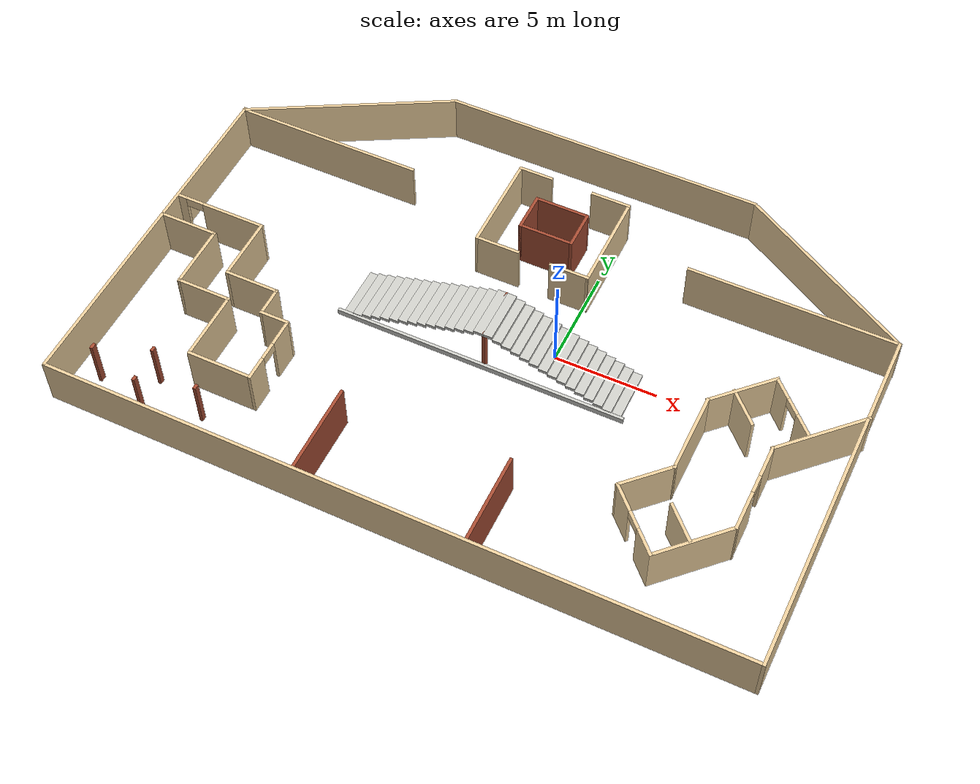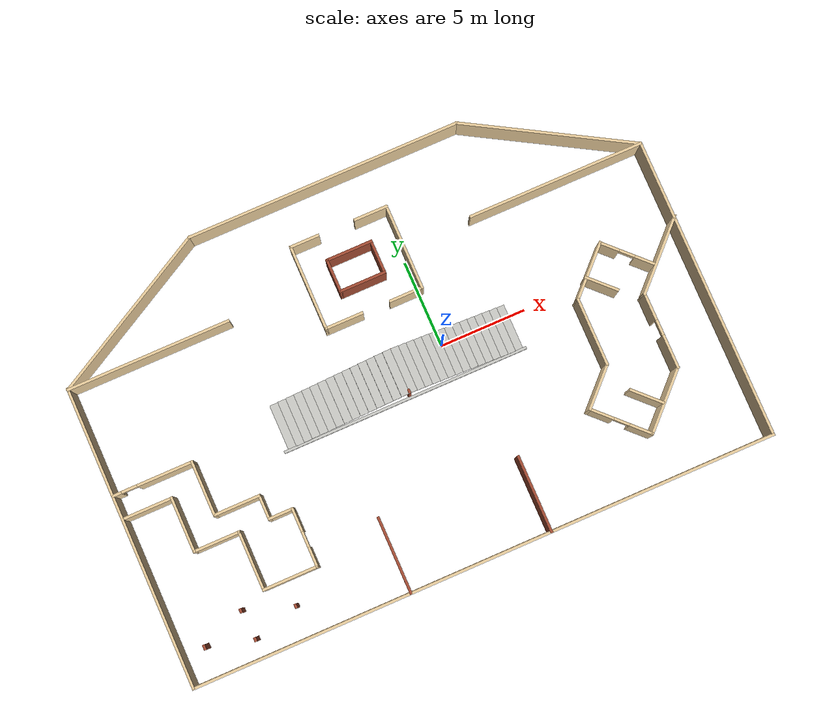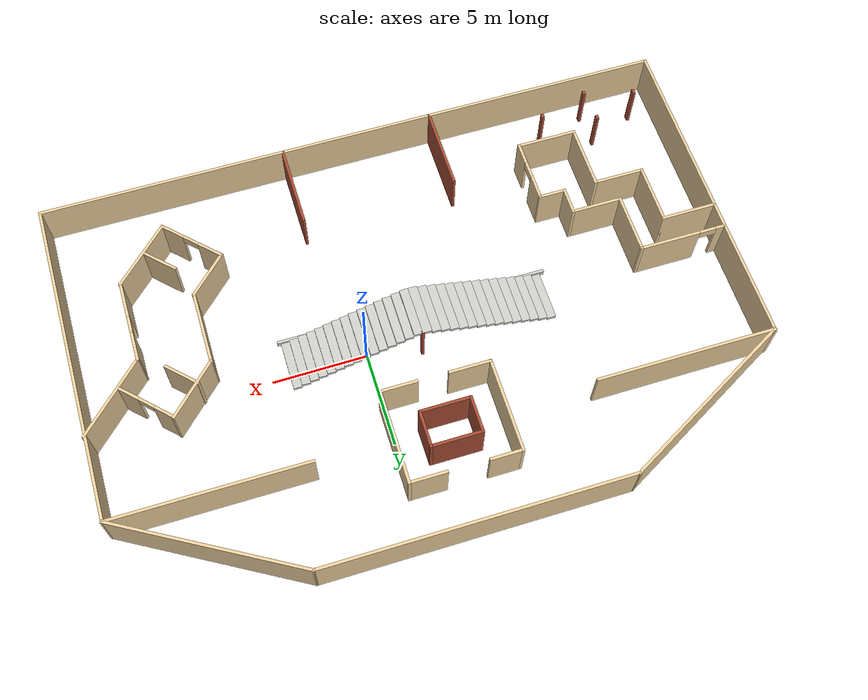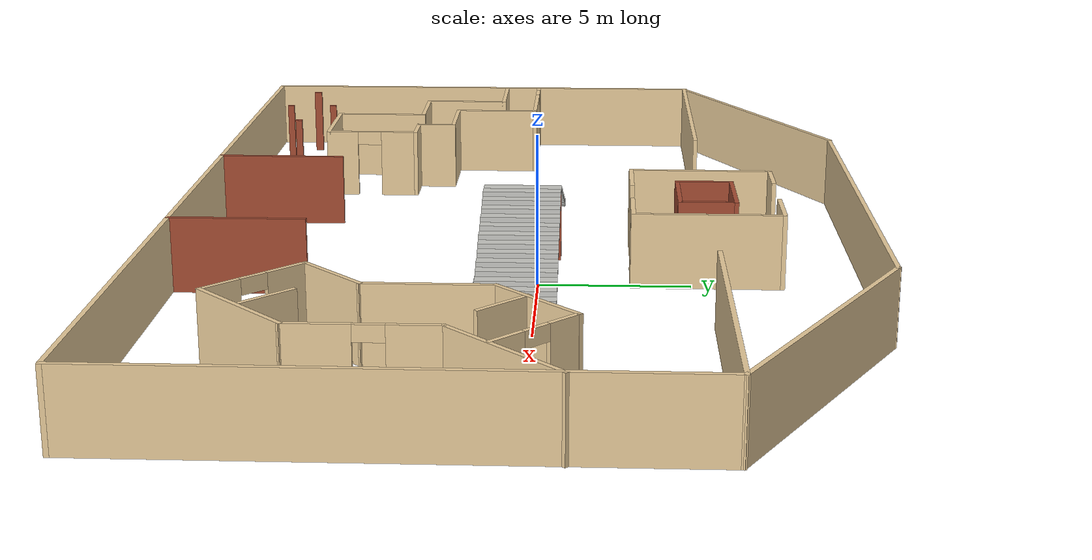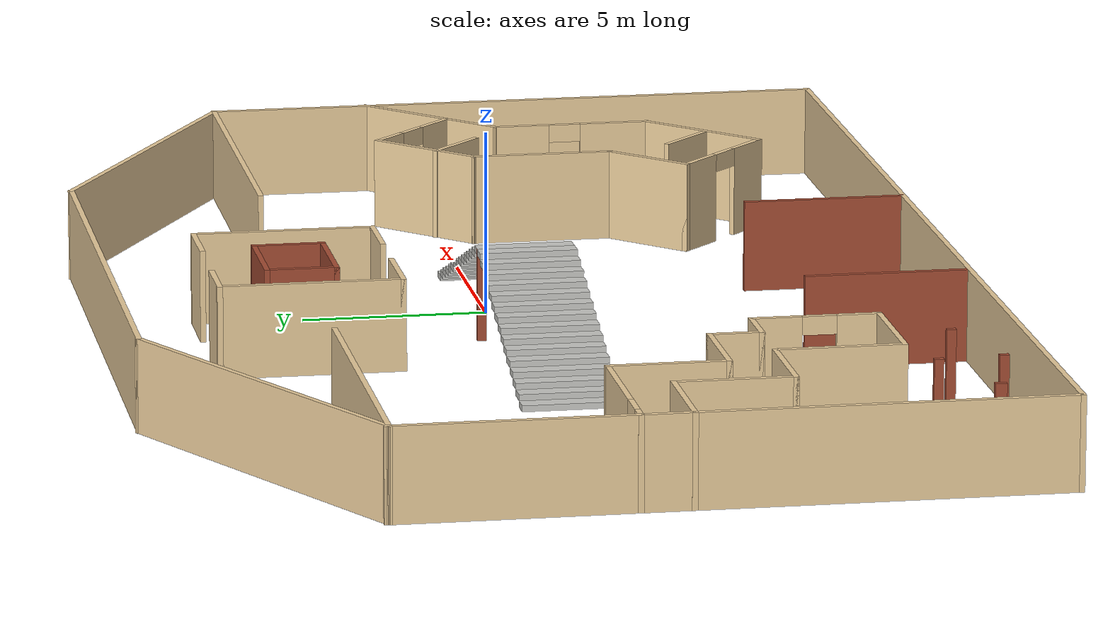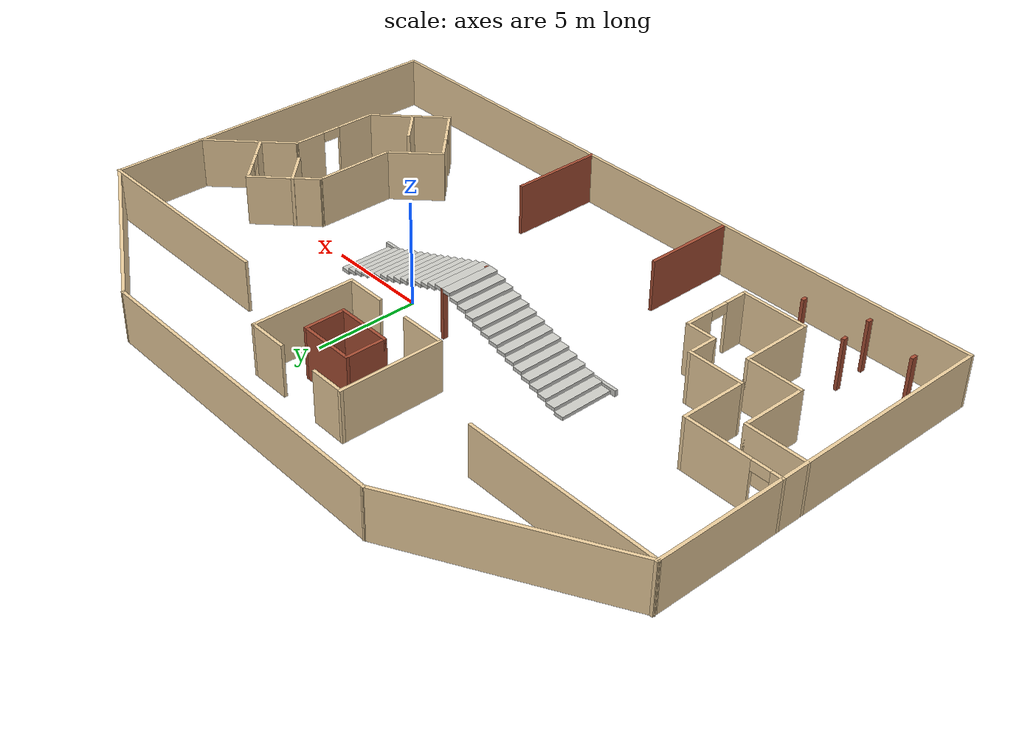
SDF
<sdf version="1.6">
 <model name="Building">
  <pose>-2.6144 -0.55091 0 0 -0 0</pose>
  <link name="Stairs_0">
   <visual name="Stairs_0_Visual_0">
    <pose>6.4462 -0.067038 0.083333 0 -0 -1.5708</pose>
    <geometry><box><size>2.62608 0.454874 0.166667</size></box></geometry>
    <material>
     <script><uri>file://media/materials/scripts/gazebo.material</uri><name>Gazebo/CeilingTiled</name></script>
     <ambient>0.666667 0.67451 1 1</ambient>
    </material>
    <meta><layer>0</layer></meta>
   </visual>
   <collision name="Stairs_0_Collision_0">
    <geometry><box><size>2.62608 0.454874 0.166667</size></box></geometry>
    <pose>6.4462 -0.067038 0.083333 0 -0 -1.5708</pose>
   </collision>
   <visual name="Stairs_0_Visual_1">
    <pose>5.99132 -0.067038 0.25 0 -0 -1.5708</pose>
    <geometry><box><size>2.62608 0.454874 0.166667</size></box></geometry>
    <material>
     <script><uri>file://media/materials/scripts/gazebo.material</uri><name>Gazebo/CeilingTiled</name></script>
     <ambient>0.666667 0.67451 1 1</ambient>
    </material>
    <meta><layer>0</layer></meta>
   </visual>
   <collision name="Stairs_0_Collision_1">
    <geometry><box><size>2.62608 0.454874 0.166667</size></box></geometry>
    <pose>5.99132 -0.067038 0.25 0 -0 -1.5708</pose>
   </collision>
   <visual name="Stairs_0_Visual_2">
    <pose>5.53645 -0.067038 0.416667 0 -0 -1.5708</pose>
    <geometry><box><size>2.62608 0.454874 0.166667</size></box></geometry>
    <material>
     <script><uri>file://media/materials/scripts/gazebo.material</uri><name>Gazebo/CeilingTiled</name></script>
     <ambient>0.666667 0.67451 1 1</ambient>
    </material>
    <meta><layer>0</layer></meta>
   </visual>
   <collision name="Stairs_0_Collision_2">
    <geometry><box><size>2.62608 0.454874 0.166667</size></box></geometry>
    <pose>5.53645 -0.067038 0.416667 0 -0 -1.5708</pose>
   </collision>
   <visual name="Stairs_0_Visual_3">
    <pose>5.08157 -0.067038 0.583333 0 -0 -1.5708</pose>
    <geometry><box><size>2.62608 0.454874 0.166667</size></box></geometry>
    <material>
     <script><uri>file://media/materials/scripts/gazebo.material</uri><name>Gazebo/CeilingTiled</name></script>
     <ambient>0.666667 0.67451 1 1</ambient>
    </material>
    <meta><layer>0</layer></meta>
   </visual>
   <collision name="Stairs_0_Collision_3">
    <geometry><box><size>2.62608 0.454874 0.166667</size></box></geometry>
    <pose>5.08157 -0.067038 0.583333 0 -0 -1.5708</pose>
   </collision>
   <visual name="Stairs_0_Visual_4">
    <pose>4.6267 -0.067038 0.75 0 -0 -1.5708</pose>
    <geometry><box><size>2.62608 0.454874 0.166667</size></box></geometry>
    <material>
     <script><uri>file://media/materials/scripts/gazebo.material</uri><name>Gazebo/CeilingTiled</name></script>
     <ambient>0.666667 0.67451 1 1</ambient>
    </material>
    <meta><layer>0</layer></meta>
   </visual>
   <collision name="Stairs_0_Collision_4">
    <geometry><box><size>2.62608 0.454874 0.166667</size></box></geometry>
    <pose>4.6267 -0.067038 0.75 0 -0 -1.5708</pose>
   </collision>
   <visual name="Stairs_0_Visual_5">
    <pose>4.17183 -0.067038 0.916667 0 -0 -1.5708</pose>
    <geometry><box><size>2.62608 0.454874 0.166667</size></box></geometry>
    <material>
     <script><uri>file://media/materials/scripts/gazebo.material</uri><name>Gazebo/CeilingTiled</name></script>
     <ambient>0.666667 0.67451 1 1</ambient>
    </material>
    <meta><layer>0</layer></meta>
   </visual>
   <collision name="Stairs_0_Collision_5">
    <geometry><box><size>2.62608 0.454874 0.166667</size></box></geometry>
    <pose>4.17183 -0.067038 0.916667 0 -0 -1.5708</pose>
   </collision>
   <visual name="Stairs_0_Visual_6">
    <pose>3.71695 -0.067037 1.08333 0 -0 -1.5708</pose>
    <geometry><box><size>2.62608 0.454874 0.166667</size></box></geometry>
    <material>
     <script><uri>file://media/materials/scripts/gazebo.material</uri><name>Gazebo/CeilingTiled</name></script>
     <ambient>0.666667 0.67451 1 1</ambient>
    </material>
    <meta><layer>0</layer></meta>
   </visual>
   <collision name="Stairs_0_Collision_6">
    <geometry><box><size>2.62608 0.454874 0.166667</size></box></geometry>
    <pose>3.71695 -0.067037 1.08333 0 -0 -1.5708</pose>
   </collision>
   <visual name="Stairs_0_Visual_7">
    <pose>3.26208 -0.067037 1.25 0 -0 -1.5708</pose>
    <geometry><box><size>2.62608 0.454874 0.166667</size></box></geometry>
    <material>
     <script><uri>file://media/materials/scripts/gazebo.material</uri><name>Gazebo/CeilingTiled</name></script>
     <ambient>0.666667 0.67451 1 1</ambient>
    </material>
    <meta><layer>0</layer></meta>
   </visual>
   <collision name="Stairs_0_Collision_7">
    <geometry><box><size>2.62608 0.454874 0.166667</size></box></geometry>
    <pose>3.26208 -0.067037 1.25 0 -0 -1.5708</pose>
   </collision>
   <visual name="Stairs_0_Visual_8">
    <pose>2.8072 -0.067037 1.41667 0 -0 -1.5708</pose>
    <geometry><box><size>2.62608 0.454874 0.166667</size></box></geometry>
    <material>
     <script><uri>file://media/materials/scripts/gazebo.material</uri><name>Gazebo/CeilingTiled</name></script>
     <ambient>0.666667 0.67451 1 1</ambient>
    </material>
    <meta><layer>0</layer></meta>
   </visual>
   <collision name="Stairs_0_Collision_8">
    <geometry><box><size>2.62608 0.454874 0.166667</size></box></geometry>
    <pose>2.8072 -0.067037 1.41667 0 -0 -1.5708</pose>
   </collision>
   <visual name="Stairs_0_Visual_9">
    <pose>2.35233 -0.067037 1.58333 0 -0 -1.5708</pose>
    <geometry><box><size>2.62608 0.454874 0.166667</size></box></geometry>
    <material>
     <script><uri>file://media/materials/scripts/gazebo.material</uri><name>Gazebo/CeilingTiled</name></script>
     <ambient>0.666667 0.67451 1 1</ambient>
    </material>
    <meta><layer>0</layer></meta>
   </visual>
   <collision name="Stairs_0_Collision_9">
    <geometry><box><size>2.62608 0.454874 0.166667</size></box></geometry>
    <pose>2.35233 -0.067037 1.58333 0 -0 -1.5708</pose>
   </collision>
   <visual name="Stairs_0_Visual_10">
    <pose>1.89745 -0.067037 1.75 0 -0 -1.5708</pose>
    <geometry><box><size>2.62608 0.454874 0.166667</size></box></geometry>
    <material>
     <script><uri>file://media/materials/scripts/gazebo.material</uri><name>Gazebo/CeilingTiled</name></script>
     <ambient>0.666667 0.67451 1 1</ambient>
    </material>
    <meta><layer>0</layer></meta>
   </visual>
   <collision name="Stairs_0_Collision_10">
    <geometry><box><size>2.62608 0.454874 0.166667</size></box></geometry>
    <pose>1.89745 -0.067037 1.75 0 -0 -1.5708</pose>
   </collision>
   <visual name="Stairs_0_Visual_11">
    <pose>1.44258 -0.067037 1.91667 0 -0 -1.5708</pose>
    <geometry><box><size>2.62608 0.454874 0.166667</size></box></geometry>
    <material>
     <script><uri>file://media/materials/scripts/gazebo.material</uri><name>Gazebo/CeilingTiled</name></script>
     <ambient>0.666667 0.67451 1 1</ambient>
    </material>
    <meta><layer>0</layer></meta>
   </visual>
   <collision name="Stairs_0_Collision_11">
    <geometry><box><size>2.62608 0.454874 0.166667</size></box></geometry>
    <pose>1.44258 -0.067037 1.91667 0 -0 -1.5708</pose>
   </collision>
   <visual name="Stairs_0_Visual_12">
    <pose>0.987705 -0.067037 2.08333 0 -0 -1.5708</pose>
    <geometry><box><size>2.62608 0.454874 0.166667</size></box></geometry>
    <material>
     <script><uri>file://media/materials/scripts/gazebo.material</uri><name>Gazebo/CeilingTiled</name></script>
     <ambient>0.666667 0.67451 1 1</ambient>
    </material>
    <meta><layer>0</layer></meta>
   </visual>
   <collision name="Stairs_0_Collision_12">
    <geometry><box><size>2.62608 0.454874 0.166667</size></box></geometry>
    <pose>0.987705 -0.067037 2.08333 0 -0 -1.5708</pose>
   </collision>
   <visual name="Stairs_0_Visual_13">
    <pose>0.532831 -0.067037 2.25 0 -0 -1.5708</pose>
    <geometry><box><size>2.62608 0.454874 0.166667</size></box></geometry>
    <material>
     <script><uri>file://media/materials/scripts/gazebo.material</uri><name>Gazebo/CeilingTiled</name></script>
     <ambient>0.666667 0.67451 1 1</ambient>
    </material>
    <meta><layer>0</layer></meta>
   </visual>
   <collision name="Stairs_0_Collision_13">
    <geometry><box><size>2.62608 0.454874 0.166667</size></box></geometry>
    <pose>0.532831 -0.067037 2.25 0 -0 -1.5708</pose>
   </collision>
   <visual name="Stairs_0_Visual_14">
    <pose>0.077957 -0.067037 2.41667 0 -0 -1.5708</pose>
    <geometry><box><size>2.62608 0.454874 0.166667</size></box></geometry>
    <material>
     <script><uri>file://media/materials/scripts/gazebo.material</uri><name>Gazebo/CeilingTiled</name></script>
     <ambient>0.666667 0.67451 1 1</ambient>
    </material>
    <meta><layer>0</layer></meta>
   </visual>
   <collision name="Stairs_0_Collision_14">
    <geometry><box><size>2.62608 0.454874 0.166667</size></box></geometry>
    <pose>0.077957 -0.067037 2.41667 0 -0 -1.5708</pose>
   </collision>
  </link>
  <link name="Stairs_1">
   <visual name="Stairs_1_Visual_0">
    <pose>-7.15228 -0.067034 0.083333 0 -0 1.5708</pose>
    <geometry><box><size>2.63216 0.483375 0.166667</size></box></geometry>
    <material>
     <script><uri>file://media/materials/scripts/gazebo.material</uri><name>Gazebo/CeilingTiled</name></script>
     <ambient>0.666667 0.67451 1 1</ambient>
    </material>
    <meta><layer>0</layer></meta>
   </visual>
   <collision name="Stairs_1_Collision_0">
    <geometry><box><size>2.63216 0.483375 0.166667</size></box></geometry>
    <pose>-7.15228 -0.067034 0.083333 0 -0 1.5708</pose>
   </collision>
   <visual name="Stairs_1_Visual_1">
    <pose>-6.66891 -0.067035 0.25 0 -0 1.5708</pose>
    <geometry><box><size>2.63216 0.483375 0.166667</size></box></geometry>
    <material>
     <script><uri>file://media/materials/scripts/gazebo.material</uri><name>Gazebo/CeilingTiled</name></script>
     <ambient>0.666667 0.67451 1 1</ambient>
    </material>
    <meta><layer>0</layer></meta>
   </visual>
   <collision name="Stairs_1_Collision_1">
    <geometry><box><size>2.63216 0.483375 0.166667</size></box></geometry>
    <pose>-6.66891 -0.067035 0.25 0 -0 1.5708</pose>
   </collision>
   <visual name="Stairs_1_Visual_2">
    <pose>-6.18553 -0.067035 0.416667 0 -0 1.5708</pose>
    <geometry><box><size>2.63216 0.483375 0.166667</size></box></geometry>
    <material>
     <script><uri>file://media/materials/scripts/gazebo.material</uri><name>Gazebo/CeilingTiled</name></script>
     <ambient>0.666667 0.67451 1 1</ambient>
    </material>
    <meta><layer>0</layer></meta>
   </visual>
   <collision name="Stairs_1_Collision_2">
    <geometry><box><size>2.63216 0.483375 0.166667</size></box></geometry>
    <pose>-6.18553 -0.067035 0.416667 0 -0 1.5708</pose>
   </collision>
   <visual name="Stairs_1_Visual_3">
    <pose>-5.70216 -0.067034 0.583333 0 -0 1.5708</pose>
    <geometry><box><size>2.63216 0.483375 0.166667</size></box></geometry>
    <material>
     <script><uri>file://media/materials/scripts/gazebo.material</uri><name>Gazebo/CeilingTiled</name></script>
     <ambient>0.666667 0.67451 1 1</ambient>
    </material>
    <meta><layer>0</layer></meta>
   </visual>
   <collision name="Stairs_1_Collision_3">
    <geometry><box><size>2.63216 0.483375 0.166667</size></box></geometry>
    <pose>-5.70216 -0.067034 0.583333 0 -0 1.5708</pose>
   </collision>
   <visual name="Stairs_1_Visual_4">
    <pose>-5.21878 -0.067034 0.75 0 -0 1.5708</pose>
    <geometry><box><size>2.63216 0.483375 0.166667</size></box></geometry>
    <material>
     <script><uri>file://media/materials/scripts/gazebo.material</uri><name>Gazebo/CeilingTiled</name></script>
     <ambient>0.666667 0.67451 1 1</ambient>
    </material>
    <meta><layer>0</layer></meta>
   </visual>
   <collision name="Stairs_1_Collision_4">
    <geometry><box><size>2.63216 0.483375 0.166667</size></box></geometry>
    <pose>-5.21878 -0.067034 0.75 0 -0 1.5708</pose>
   </collision>
   <visual name="Stairs_1_Visual_5">
    <pose>-4.73541 -0.067034 0.916667 0 -0 1.5708</pose>
    <geometry><box><size>2.63216 0.483375 0.166667</size></box></geometry>
    <material>
     <script><uri>file://media/materials/scripts/gazebo.material</uri><name>Gazebo/CeilingTiled</name></script>
     <ambient>0.666667 0.67451 1 1</ambient>
    </material>
    <meta><layer>0</layer></meta>
   </visual>
   <collision name="Stairs_1_Collision_5">
    <geometry><box><size>2.63216 0.483375 0.166667</size></box></geometry>
    <pose>-4.73541 -0.067034 0.916667 0 -0 1.5708</pose>
   </collision>
   <visual name="Stairs_1_Visual_6">
    <pose>-4.25203 -0.067034 1.08333 0 -0 1.5708</pose>
    <geometry><box><size>2.63216 0.483375 0.166667</size></box></geometry>
    <material>
     <script><uri>file://media/materials/scripts/gazebo.material</uri><name>Gazebo/CeilingTiled</name></script>
     <ambient>0.666667 0.67451 1 1</ambient>
    </material>
    <meta><layer>0</layer></meta>
   </visual>
   <collision name="Stairs_1_Collision_6">
    <geometry><box><size>2.63216 0.483375 0.166667</size></box></geometry>
    <pose>-4.25203 -0.067034 1.08333 0 -0 1.5708</pose>
   </collision>
   <visual name="Stairs_1_Visual_7">
    <pose>-3.76865 -0.067034 1.25 0 -0 1.5708</pose>
    <geometry><box><size>2.63216 0.483375 0.166667</size></box></geometry>
    <material>
     <script><uri>file://media/materials/scripts/gazebo.material</uri><name>Gazebo/CeilingTiled</name></script>
     <ambient>0.666667 0.67451 1 1</ambient>
    </material>
    <meta><layer>0</layer></meta>
   </visual>
   <collision name="Stairs_1_Collision_7">
    <geometry><box><size>2.63216 0.483375 0.166667</size></box></geometry>
    <pose>-3.76865 -0.067034 1.25 0 -0 1.5708</pose>
   </collision>
   <visual name="Stairs_1_Visual_8">
    <pose>-3.28528 -0.067034 1.41667 0 -0 1.5708</pose>
    <geometry><box><size>2.63216 0.483375 0.166667</size></box></geometry>
    <material>
     <script><uri>file://media/materials/scripts/gazebo.material</uri><name>Gazebo/CeilingTiled</name></script>
     <ambient>0.666667 0.67451 1 1</ambient>
    </material>
    <meta><layer>0</layer></meta>
   </visual>
   <collision name="Stairs_1_Collision_8">
    <geometry><box><size>2.63216 0.483375 0.166667</size></box></geometry>
    <pose>-3.28528 -0.067034 1.41667 0 -0 1.5708</pose>
   </collision>
   <visual name="Stairs_1_Visual_9">
    <pose>-2.80191 -0.067034 1.58333 0 -0 1.5708</pose>
    <geometry><box><size>2.63216 0.483375 0.166667</size></box></geometry>
    <material>
     <script><uri>file://media/materials/scripts/gazebo.material</uri><name>Gazebo/CeilingTiled</name></script>
     <ambient>0.666667 0.67451 1 1</ambient>
    </material>
    <meta><layer>0</layer></meta>
   </visual>
   <collision name="Stairs_1_Collision_9">
    <geometry><box><size>2.63216 0.483375 0.166667</size></box></geometry>
    <pose>-2.80191 -0.067034 1.58333 0 -0 1.5708</pose>
   </collision>
   <visual name="Stairs_1_Visual_10">
    <pose>-2.31853 -0.067034 1.75 0 -0 1.5708</pose>
    <geometry><box><size>2.63216 0.483375 0.166667</size></box></geometry>
    <material>
     <script><uri>file://media/materials/scripts/gazebo.material</uri><name>Gazebo/CeilingTiled</name></script>
     <ambient>0.666667 0.67451 1 1</ambient>
    </material>
    <meta><layer>0</layer></meta>
   </visual>
   <collision name="Stairs_1_Collision_10">
    <geometry><box><size>2.63216 0.483375 0.166667</size></box></geometry>
    <pose>-2.31853 -0.067034 1.75 0 -0 1.5708</pose>
   </collision>
   <visual name="Stairs_1_Visual_11">
    <pose>-1.83515 -0.067034 1.91667 0 -0 1.5708</pose>
    <geometry><box><size>2.63216 0.483375 0.166667</size></box></geometry>
    <material>
     <script><uri>file://media/materials/scripts/gazebo.material</uri><name>Gazebo/CeilingTiled</name></script>
     <ambient>0.666667 0.67451 1 1</ambient>
    </material>
    <meta><layer>0</layer></meta>
   </visual>
   <collision name="Stairs_1_Collision_11">
    <geometry><box><size>2.63216 0.483375 0.166667</size></box></geometry>
    <pose>-1.83515 -0.067034 1.91667 0 -0 1.5708</pose>
   </collision>
   <visual name="Stairs_1_Visual_12">
    <pose>-1.35178 -0.067034 2.08333 0 -0 1.5708</pose>
    <geometry><box><size>2.63216 0.483375 0.166667</size></box></geometry>
    <material>
     <script><uri>file://media/materials/scripts/gazebo.material</uri><name>Gazebo/CeilingTiled</name></script>
     <ambient>0.666667 0.67451 1 1</ambient>
    </material>
    <meta><layer>0</layer></meta>
   </visual>
   <collision name="Stairs_1_Collision_12">
    <geometry><box><size>2.63216 0.483375 0.166667</size></box></geometry>
    <pose>-1.35178 -0.067034 2.08333 0 -0 1.5708</pose>
   </collision>
   <visual name="Stairs_1_Visual_13">
    <pose>-0.868404 -0.067034 2.25 0 -0 1.5708</pose>
    <geometry><box><size>2.63216 0.483375 0.166667</size></box></geometry>
    <material>
     <script><uri>file://media/materials/scripts/gazebo.material</uri><name>Gazebo/CeilingTiled</name></script>
     <ambient>0.666667 0.67451 1 1</ambient>
    </material>
    <meta><layer>0</layer></meta>
   </visual>
   <collision name="Stairs_1_Collision_13">
    <geometry><box><size>2.63216 0.483375 0.166667</size></box></geometry>
    <pose>-0.868404 -0.067034 2.25 0 -0 1.5708</pose>
   </collision>
   <visual name="Stairs_1_Visual_14">
    <pose>-0.385029 -0.067034 2.41667 0 -0 1.5708</pose>
    <geometry><box><size>2.63216 0.483375 0.166667</size></box></geometry>
    <material>
     <script><uri>file://media/materials/scripts/gazebo.material</uri><name>Gazebo/CeilingTiled</name></script>
     <ambient>0.666667 0.67451 1 1</ambient>
    </material>
    <meta><layer>0</layer></meta>
   </visual>
   <collision name="Stairs_1_Collision_14">
    <geometry><box><size>2.63216 0.483375 0.166667</size></box></geometry>
    <pose>-0.385029 -0.067034 2.41667 0 -0 1.5708</pose>
   </collision>
  </link>
  <link name="Wall_0">
   <collision name="Wall_0_Collision">
    <geometry><box><size>17.5 0.15 2.5</size></box></geometry>
    <pose>0 0 1.25 0 -0 0</pose>
   </collision>
   <visual name="Wall_0_Visual">
    <pose>0 0 1.25 0 -0 0</pose>
    <geometry><box><size>17.5 0.15 2.5</size></box></geometry>
    <material>
     <script><uri>file://media/materials/scripts/gazebo.material</uri><name>Gazebo/Grey</name></script>
     <ambient>0.921569 0.807843 0.615686 1</ambient>
    </material>
    <meta><layer>0</layer></meta>
   </visual>
   <pose>-16.9267 -2.48522 0 0 0 -1.5708</pose>
  </link>
  <link name="Wall_1">
   <collision name="Wall_1_Collision">
    <geometry><box><size>33.9469 0.15 2.5</size></box></geometry>
    <pose>0 0 1.25 0 -0 0</pose>
   </collision>
   <visual name="Wall_1_Visual">
    <pose>0 0 1.25 0 -0 0</pose>
    <geometry><box><size>33.9469 0.15 2.5</size></box></geometry>
    <material>
     <script><uri>file://media/materials/scripts/gazebo.material</uri><name>Gazebo/Grey</name></script>
     <ambient>0.921569 0.807843 0.615686 1</ambient>
    </material>
    <meta><layer>0</layer></meta>
   </visual>
   <pose>-0.028412 -11.2137 0 0 -0 0</pose>
  </link>
  <link name="Wall_10">
   <collision name="Wall_10_Collision">
    <geometry><box><size>2.75 0.15 2.5</size></box></geometry>
    <pose>0 0 1.25 0 -0 0</pose>
   </collision>
   <visual name="Wall_10_Visual">
    <pose>0 0 1.25 0 -0 0</pose>
    <geometry><box><size>2.75 0.15 2.5</size></box></geometry>
    <material>
     <script><uri>file://media/materials/scripts/gazebo.material</uri><name>Gazebo/Bricks</name></script>
     <ambient>1 1 1 1</ambient>
    </material>
    <meta><layer>0</layer></meta>
   </visual>
   <pose>-0.057433 7.04582 0 0 -0 3.14159</pose>
  </link>
  <link name="Wall_100">
   <collision name="Wall_100_Collision">
    <geometry><box><size>1.5 0.15 2.5</size></box></geometry>
    <pose>0 0 1.25 0 -0 0</pose>
   </collision>
   <visual name="Wall_100_Visual">
    <pose>0 0 1.25 0 -0 0</pose>
    <geometry><box><size>1.5 0.15 2.5</size></box></geometry>
    <material>
     <script><uri>file://media/materials/scripts/gazebo.material</uri><name>Gazebo/Grey</name></script>
     <ambient>0.921569 0.807843 0.615686 1</ambient>
    </material>
    <meta><layer>0</layer></meta>
   </visual>
   <pose>-9.72758 -3.87794 0 0 -0 1.5708</pose>
  </link>
  <link name="Wall_101">
   <collision name="Wall_101_Collision">
    <geometry><box><size>2.75 0.15 2.5</size></box></geometry>
    <pose>0 0 1.25 0 -0 0</pose>
   </collision>
   <visual name="Wall_101_Visual">
    <pose>0 0 1.25 0 -0 0</pose>
    <geometry><box><size>2.75 0.15 2.5</size></box></geometry>
    <material>
     <script><uri>file://media/materials/scripts/gazebo.material</uri><name>Gazebo/Grey</name></script>
     <ambient>0.921569 0.807843 0.615686 1</ambient>
    </material>
    <meta><layer>0</layer></meta>
   </visual>
   <pose>-11.0276 -3.20294 0 0 -0 3.14159</pose>
  </link>
  <link name="Wall_104">
   <collision name="Wall_104_Collision">
    <geometry><box><size>0.25 0.15 2.5</size></box></geometry>
    <pose>0 0 1.25 0 -0 0</pose>
   </collision>
   <visual name="Wall_104_Visual">
    <pose>0 0 1.25 0 -0 0</pose>
    <geometry><box><size>0.25 0.15 2.5</size></box></geometry>
    <material>
     <script><uri>file://media/materials/scripts/gazebo.material</uri><name>Gazebo/Bricks</name></script>
     <ambient>1 1 1 1</ambient>
    </material>
    <meta><layer>0</layer></meta>
   </visual>
   <pose>-12.9102 -10.1479 0 0 -0 1.5708</pose>
  </link>
  <link name="Wall_107">
   <collision name="Wall_107_Collision">
    <geometry><box><size>3.25 0.15 2.5</size></box></geometry>
    <pose>0 0 1.25 0 -0 0</pose>
   </collision>
   <visual name="Wall_107_Visual">
    <pose>0 0 1.25 0 -0 0</pose>
    <geometry><box><size>3.25 0.15 2.5</size></box></geometry>
    <material>
     <script><uri>file://media/materials/scripts/gazebo.material</uri><name>Gazebo/Grey</name></script>
     <ambient>0.921569 0.807843 0.615686 1</ambient>
    </material>
    <meta><layer>0</layer></meta>
   </visual>
   <pose>-12.3276 -1.65294 0 0 -0 1.5708</pose>
  </link>
  <link name="Wall_109">
   <pose>-14.6276 -0.102944 0 0 -0 3.14159</pose>
   <visual name="Wall_109_Visual_0">
    <pose>-0.739995 0 1.25 0 -0 0</pose>
    <geometry><box><size>3.27001 0.15 2.5</size></box></geometry>
    <material>
     <script><uri>file://media/materials/scripts/gazebo.material</uri><name>Gazebo/Grey</name></script>
     <ambient>0.921569 0.807843 0.615686 1</ambient>
    </material>
    <meta><layer>0</layer></meta>
   </visual>
   <collision name="Wall_109_Collision_0">
    <geometry><box><size>3.27001 0.15 2.5</size></box></geometry>
    <pose>-0.739995 0 1.25 0 -0 0</pose>
   </collision>
   <visual name="Wall_109_Visual_1">
    <pose>2.08501 0 1.25 0 -0 0</pose>
    <geometry><box><size>0.579989 0.15 2.5</size></box></geometry>
    <material>
     <script><uri>file://media/materials/scripts/gazebo.material</uri><name>Gazebo/Grey</name></script>
     <ambient>0.921569 0.807843 0.615686 1</ambient>
    </material>
    <meta><layer>0</layer></meta>
   </visual>
   <collision name="Wall_109_Collision_1">
    <geometry><box><size>0.579989 0.15 2.5</size></box></geometry>
    <pose>2.08501 0 1.25 0 -0 0</pose>
   </collision>
   <visual name="Wall_109_Visual_2">
    <pose>1.34501 0 2.25 0 -0 0</pose>
    <geometry><box><size>0.9 0.15 0.5</size></box></geometry>
    <material>
     <script><uri>file://media/materials/scripts/gazebo.material</uri><name>Gazebo/Grey</name></script>
     <ambient>0.921569 0.807843 0.615686 1</ambient>
    </material>
    <meta><layer>0</layer></meta>
   </visual>
   <collision name="Wall_109_Collision_2">
    <geometry><box><size>0.9 0.15 0.5</size></box></geometry>
    <pose>1.34501 0 2.25 0 -0 0</pose>
   </collision>
  </link>
  <link name="Wall_111">
   <collision name="Wall_111_Collision">
    <geometry><box><size>1.75 0.15 2.5</size></box></geometry>
    <pose>0 0 1.25 0 -0 0</pose>
   </collision>
   <visual name="Wall_111_Visual">
    <pose>0 0 1.25 0 -0 0</pose>
    <geometry><box><size>1.75 0.15 2.5</size></box></geometry>
    <material>
     <script><uri>file://media/materials/scripts/gazebo.material</uri><name>Gazebo/Grey</name></script>
     <ambient>0.921569 0.807843 0.615686 1</ambient>
    </material>
    <meta><layer>0</layer></meta>
   </visual>
   <pose>-2.08044 8.49517 0 0 -0 3.14159</pose>
  </link>
  <link name="Wall_112">
   <collision name="Wall_112_Collision">
    <geometry><box><size>5 0.15 2.5</size></box></geometry>
    <pose>0 0 1.25 0 -0 0</pose>
   </collision>
   <visual name="Wall_112_Visual">
    <pose>0 0 1.25 0 -0 0</pose>
    <geometry><box><size>5 0.15 2.5</size></box></geometry>
    <material>
     <script><uri>file://media/materials/scripts/gazebo.material</uri><name>Gazebo/Grey</name></script>
     <ambient>0.921569 0.807843 0.615686 1</ambient>
    </material>
    <meta><layer>0</layer></meta>
   </visual>
   <pose>-2.88044 6.07018 0 0 0 -1.5708</pose>
  </link>
  <link name="Wall_113">
   <collision name="Wall_113_Collision">
    <geometry><box><size>2.25 0.15 2.5</size></box></geometry>
    <pose>0 0 1.25 0 -0 0</pose>
   </collision>
   <visual name="Wall_113_Visual">
    <pose>0 0 1.25 0 -0 0</pose>
    <geometry><box><size>2.25 0.15 2.5</size></box></geometry>
    <material>
     <script><uri>file://media/materials/scripts/gazebo.material</uri><name>Gazebo/Grey</name></script>
     <ambient>0.921569 0.807843 0.615686 1</ambient>
    </material>
    <meta><layer>0</layer></meta>
   </visual>
   <pose>-1.83044 3.64518 0 0 -0 0</pose>
  </link>
  <link name="Wall_115">
   <collision name="Wall_115_Collision">
    <geometry><box><size>2 0.15 2.5</size></box></geometry>
    <pose>0 0 1.25 0 -0 0</pose>
   </collision>
   <visual name="Wall_115_Visual">
    <pose>0 0 1.25 0 -0 0</pose>
    <geometry><box><size>2 0.15 2.5</size></box></geometry>
    <material>
     <script><uri>file://media/materials/scripts/gazebo.material</uri><name>Gazebo/Grey</name></script>
     <ambient>0.921569 0.807843 0.615686 1</ambient>
    </material>
    <meta><layer>0</layer></meta>
   </visual>
   <pose>1.8436 3.62921 0 0 -0 0</pose>
  </link>
  <link name="Wall_116">
   <collision name="Wall_116_Collision">
    <geometry><box><size>5 0.15 2.5</size></box></geometry>
    <pose>0 0 1.25 0 -0 0</pose>
   </collision>
   <visual name="Wall_116_Visual">
    <pose>0 0 1.25 0 -0 0</pose>
    <geometry><box><size>5 0.15 2.5</size></box></geometry>
    <material>
     <script><uri>file://media/materials/scripts/gazebo.material</uri><name>Gazebo/Grey</name></script>
     <ambient>0.921569 0.807843 0.615686 1</ambient>
    </material>
    <meta><layer>0</layer></meta>
   </visual>
   <pose>2.7686 6.05421 0 0 -0 1.5708</pose>
  </link>
  <link name="Wall_117">
   <collision name="Wall_117_Collision">
    <geometry><box><size>2 0.15 2.5</size></box></geometry>
    <pose>0 0 1.25 0 -0 0</pose>
   </collision>
   <visual name="Wall_117_Visual">
    <pose>0 0 1.25 0 -0 0</pose>
    <geometry><box><size>2 0.15 2.5</size></box></geometry>
    <material>
     <script><uri>file://media/materials/scripts/gazebo.material</uri><name>Gazebo/Grey</name></script>
     <ambient>0.921569 0.807843 0.615686 1</ambient>
    </material>
    <meta><layer>0</layer></meta>
   </visual>
   <pose>1.8436 8.47921 0 0 -0 3.14159</pose>
  </link>
  <link name="Wall_119">
   <collision name="Wall_119_Collision">
    <geometry><box><size>2 0.15 2.5</size></box></geometry>
    <pose>0 0 1.25 0 -0 0</pose>
   </collision>
   <visual name="Wall_119_Visual">
    <pose>0 0 1.25 0 -0 0</pose>
    <geometry><box><size>2 0.15 2.5</size></box></geometry>
    <material>
     <script><uri>file://media/materials/scripts/gazebo.material</uri><name>Gazebo/Grey</name></script>
     <ambient>0.921569 0.807843 0.615686 1</ambient>
    </material>
    <meta><layer>0</layer></meta>
   </visual>
   <pose>11.7725 -0.066088 0 0 0 -0.785398</pose>
  </link>
  <link name="Wall_12">
   <collision name="Wall_12_Collision">
    <geometry><box><size>4.5 0.15 2.5</size></box></geometry>
    <pose>0 0 1.25 0 -0 0</pose>
   </collision>
   <visual name="Wall_12_Visual">
    <pose>0 0 1.25 0 -0 0</pose>
    <geometry><box><size>4.5 0.15 2.5</size></box></geometry>
    <material>
     <script><uri>file://media/materials/scripts/gazebo.material</uri><name>Gazebo/Bricks</name></script>
     <ambient>1 1 1 1</ambient>
    </material>
    <meta><layer>0</layer></meta>
   </visual>
   <pose>-4.35357 -9.02354 0 0 -0 1.5708</pose>
  </link>
  <link name="Wall_121">
   <collision name="Wall_121_Collision">
    <geometry><box><size>2 0.15 2.5</size></box></geometry>
    <pose>0 0 1.25 0 -0 0</pose>
   </collision>
   <visual name="Wall_121_Visual">
    <pose>0 0 1.25 0 -0 0</pose>
    <geometry><box><size>2 0.15 2.5</size></box></geometry>
    <material>
     <script><uri>file://media/materials/scripts/gazebo.material</uri><name>Gazebo/Grey</name></script>
     <ambient>0.921569 0.807843 0.615686 1</ambient>
    </material>
    <meta><layer>0</layer></meta>
   </visual>
   <pose>11.4937 -6.61834 0 0 -0 2.35619</pose>
  </link>
  <link name="Wall_14">
   <collision name="Wall_14_Collision">
    <geometry><box><size>4.5 0.15 2.5</size></box></geometry>
    <pose>0 0 1.25 0 -0 0</pose>
   </collision>
   <visual name="Wall_14_Visual">
    <pose>0 0 1.25 0 -0 0</pose>
    <geometry><box><size>4.5 0.15 2.5</size></box></geometry>
    <material>
     <script><uri>file://media/materials/scripts/gazebo.material</uri><name>Gazebo/Bricks</name></script>
     <ambient>1 1 1 1</ambient>
    </material>
    <meta><layer>0</layer></meta>
   </visual>
   <pose>3.83231 -9.02354 0 0 -0 1.5708</pose>
  </link>
  <link name="Wall_16">
   <collision name="Wall_16_Collision">
    <geometry><box><size>0.25 0.15 2.5</size></box></geometry>
    <pose>0 0 1.25 0 -0 0</pose>
   </collision>
   <visual name="Wall_16_Visual">
    <pose>0 0 1.25 0 -0 0</pose>
    <geometry><box><size>0.25 0.15 2.5</size></box></geometry>
    <material>
     <script><uri>file://media/materials/scripts/gazebo.material</uri><name>Gazebo/Bricks</name></script>
     <ambient>1 1 1 1</ambient>
    </material>
    <meta><layer>0</layer></meta>
   </visual>
   <pose>-0.126876 -1.25057 0 0 -0 1.5708</pose>
  </link>
  <link name="Wall_18">
   <collision name="Wall_18_Collision">
    <geometry><box><size>0.25 0.15 2.5</size></box></geometry>
    <pose>0 0 1.25 0 -0 0</pose>
   </collision>
   <visual name="Wall_18_Visual">
    <pose>0 0 1.25 0 -0 0</pose>
    <geometry><box><size>0.25 0.15 2.5</size></box></geometry>
    <material>
     <script><uri>file://media/materials/scripts/gazebo.material</uri><name>Gazebo/Bricks</name></script>
     <ambient>1 1 1 1</ambient>
    </material>
    <meta><layer>0</layer></meta>
   </visual>
   <pose>-0.165976 1.12851 0 0 -0 1.5708</pose>
  </link>
  <link name="Wall_2">
   <collision name="Wall_2_Collision">
    <geometry><box><size>17.5 0.15 2.5</size></box></geometry>
    <pose>0 0 1.25 0 -0 0</pose>
   </collision>
   <visual name="Wall_2_Visual">
    <pose>0 0 1.25 0 -0 0</pose>
    <geometry><box><size>17.5 0.15 2.5</size></box></geometry>
    <material>
     <script><uri>file://media/materials/scripts/gazebo.material</uri><name>Gazebo/Grey</name></script>
     <ambient>0.921569 0.807843 0.615686 1</ambient>
    </material>
    <meta><layer>0</layer></meta>
   </visual>
   <pose>16.8698 -2.53873 0 0 -0 1.5708</pose>
  </link>
  <link name="Wall_20">
   <collision name="Wall_20_Collision">
    <geometry><box><size>3 0.15 2.5</size></box></geometry>
    <pose>0 0 1.25 0 -0 0</pose>
   </collision>
   <visual name="Wall_20_Visual">
    <pose>0 0 1.25 0 -0 0</pose>
    <geometry><box><size>3 0.15 2.5</size></box></geometry>
    <material>
     <script><uri>file://media/materials/scripts/gazebo.material</uri><name>Gazebo/Grey</name></script>
     <ambient>0.921569 0.807843 0.615686 1</ambient>
    </material>
    <meta><layer>0</layer></meta>
   </visual>
   <pose>-15.5026 -1.45294 0 0 -0 0</pose>
  </link>
  <link name="Wall_21">
   <collision name="Wall_21_Collision">
    <geometry><box><size>3.25 0.15 2.5</size></box></geometry>
    <pose>0 0 1.25 0 -0 0</pose>
   </collision>
   <visual name="Wall_21_Visual">
    <pose>0 0 1.25 0 -0 0</pose>
    <geometry><box><size>3.25 0.15 2.5</size></box></geometry>
    <material>
     <script><uri>file://media/materials/scripts/gazebo.material</uri><name>Gazebo/Grey</name></script>
     <ambient>0.921569 0.807843 0.615686 1</ambient>
    </material>
    <meta><layer>0</layer></meta>
   </visual>
   <pose>-14.0776 -3.00294 0 0 0 -1.5708</pose>
  </link>
  <link name="Wall_22">
   <collision name="Wall_22_Collision">
    <geometry><box><size>2.75 0.15 2.5</size></box></geometry>
    <pose>0 0 1.25 0 -0 0</pose>
   </collision>
   <visual name="Wall_22_Visual">
    <pose>0 0 1.25 0 -0 0</pose>
    <geometry><box><size>2.75 0.15 2.5</size></box></geometry>
    <material>
     <script><uri>file://media/materials/scripts/gazebo.material</uri><name>Gazebo/Grey</name></script>
     <ambient>0.921569 0.807843 0.615686 1</ambient>
    </material>
    <meta><layer>0</layer></meta>
   </visual>
   <pose>-12.7776 -4.55294 0 0 -0 0</pose>
  </link>
  <link name="Wall_23">
   <collision name="Wall_23_Collision">
    <geometry><box><size>3.5 0.15 2.5</size></box></geometry>
    <pose>0 0 1.25 0 -0 0</pose>
   </collision>
   <visual name="Wall_23_Visual">
    <pose>0 0 1.25 0 -0 0</pose>
    <geometry><box><size>3.5 0.15 2.5</size></box></geometry>
    <material>
     <script><uri>file://media/materials/scripts/gazebo.material</uri><name>Gazebo/Grey</name></script>
     <ambient>0.921569 0.807843 0.615686 1</ambient>
    </material>
    <meta><layer>0</layer></meta>
   </visual>
   <pose>-11.4776 -6.22794 0 0 0 -1.5708</pose>
  </link>
  <link name="Wall_24">
   <collision name="Wall_24_Collision">
    <geometry><box><size>3.25 0.15 2.5</size></box></geometry>
    <pose>0 0 1.25 0 -0 0</pose>
   </collision>
   <visual name="Wall_24_Visual">
    <pose>0 0 1.25 0 -0 0</pose>
    <geometry><box><size>3.25 0.15 2.5</size></box></geometry>
    <material>
     <script><uri>file://media/materials/scripts/gazebo.material</uri><name>Gazebo/Grey</name></script>
     <ambient>0.921569 0.807843 0.615686 1</ambient>
    </material>
    <meta><layer>0</layer></meta>
   </visual>
   <pose>-9.92758 -7.90294 0 0 -0 0</pose>
  </link>
  <link name="Wall_26">
   <pose>-8.37758 -6.22794 0 0 -0 1.5708</pose>
   <visual name="Wall_26_Visual_0">
    <pose>-1.15046 0 1.25 0 -0 0</pose>
    <geometry><box><size>1.19909 0.15 2.5</size></box></geometry>
    <material>
     <script><uri>file://media/materials/scripts/gazebo.material</uri><name>Gazebo/Grey</name></script>
     <ambient>0.921569 0.807843 0.615686 1</ambient>
    </material>
    <meta><layer>0</layer></meta>
   </visual>
   <collision name="Wall_26_Collision_0">
    <geometry><box><size>1.19909 0.15 2.5</size></box></geometry>
    <pose>-1.15046 0 1.25 0 -0 0</pose>
   </collision>
   <visual name="Wall_26_Visual_1">
    <pose>1.04954 0 1.25 0 -0 0</pose>
    <geometry><box><size>1.40091 0.15 2.5</size></box></geometry>
    <material>
     <script><uri>file://media/materials/scripts/gazebo.material</uri><name>Gazebo/Grey</name></script>
     <ambient>0.921569 0.807843 0.615686 1</ambient>
    </material>
    <meta><layer>0</layer></meta>
   </visual>
   <collision name="Wall_26_Collision_1">
    <geometry><box><size>1.40091 0.15 2.5</size></box></geometry>
    <pose>1.04954 0 1.25 0 -0 0</pose>
   </collision>
   <visual name="Wall_26_Visual_2">
    <pose>-0.100914 0 2.25 0 -0 0</pose>
    <geometry><box><size>0.9 0.15 0.5</size></box></geometry>
    <material>
     <script><uri>file://media/materials/scripts/gazebo.material</uri><name>Gazebo/Grey</name></script>
     <ambient>0.921569 0.807843 0.615686 1</ambient>
    </material>
    <meta><layer>0</layer></meta>
   </visual>
   <collision name="Wall_26_Collision_2">
    <geometry><box><size>0.9 0.15 0.5</size></box></geometry>
    <pose>-0.100914 0 2.25 0 -0 0</pose>
   </collision>
  </link>
  <link name="Wall_29">
   <collision name="Wall_29_Collision">
    <geometry><box><size>0.25 0.15 2.5</size></box></geometry>
    <pose>0 0 1.25 0 -0 0</pose>
   </collision>
   <visual name="Wall_29_Visual">
    <pose>0 0 1.25 0 -0 0</pose>
    <geometry><box><size>0.25 0.15 2.5</size></box></geometry>
    <material>
     <script><uri>file://media/materials/scripts/gazebo.material</uri><name>Gazebo/Bricks</name></script>
     <ambient>1 1 1 1</ambient>
    </material>
    <meta><layer>0</layer></meta>
   </visual>
   <pose>-10.2469 -9.3778 0 0 0 -1.5708</pose>
  </link>
  <link name="Wall_3">
   <collision name="Wall_3_Collision">
    <geometry><box><size>10.25 0.15 2.5</size></box></geometry>
    <pose>0 0 1.25 0 -0 0</pose>
   </collision>
   <visual name="Wall_3_Visual">
    <pose>0 0 1.25 0 -0 0</pose>
    <geometry><box><size>10.25 0.15 2.5</size></box></geometry>
    <material>
     <script><uri>file://media/materials/scripts/gazebo.material</uri><name>Gazebo/Grey</name></script>
     <ambient>0.921569 0.807843 0.615686 1</ambient>
    </material>
    <meta><layer>0</layer></meta>
   </visual>
   <pose>12.4964 8.66127 0 0 -0 2.61799</pose>
  </link>
  <link name="Wall_33">
   <collision name="Wall_33_Collision">
    <geometry><box><size>0.25 0.15 2.5</size></box></geometry>
    <pose>0 0 1.25 0 -0 0</pose>
   </collision>
   <visual name="Wall_33_Visual">
    <pose>0 0 1.25 0 -0 0</pose>
    <geometry><box><size>0.25 0.15 2.5</size></box></geometry>
    <material>
     <script><uri>file://media/materials/scripts/gazebo.material</uri><name>Gazebo/Bricks</name></script>
     <ambient>1 1 1 1</ambient>
    </material>
    <meta><layer>0</layer></meta>
   </visual>
   <pose>-13.0338 -8.43248 0 0 -0 1.5708</pose>
  </link>
  <link name="Wall_35">
   <collision name="Wall_35_Collision">
    <geometry><box><size>0.3 0.15 2.5</size></box></geometry>
    <pose>0 0 1.25 0 -0 0</pose>
   </collision>
   <visual name="Wall_35_Visual">
    <pose>0 0 1.25 0 -0 0</pose>
    <geometry><box><size>0.3 0.15 2.5</size></box></geometry>
    <material>
     <script><uri>file://media/materials/scripts/gazebo.material</uri><name>Gazebo/Bricks</name></script>
     <ambient>1 1 1 1</ambient>
    </material>
    <meta><layer>0</layer></meta>
   </visual>
   <pose>-15.5481 -9.44719 0 0 -0 1.5708</pose>
  </link>
  <link name="Wall_4">
   <collision name="Wall_4_Collision">
    <geometry><box><size>16 0.15 2.5</size></box></geometry>
    <pose>0 0 1.25 0 -0 0</pose>
   </collision>
   <visual name="Wall_4_Visual">
    <pose>0 0 1.25 0 -0 0</pose>
    <geometry><box><size>16 0.15 2.5</size></box></geometry>
    <material>
     <script><uri>file://media/materials/scripts/gazebo.material</uri><name>Gazebo/Grey</name></script>
     <ambient>0.921569 0.807843 0.615686 1</ambient>
    </material>
    <meta><layer>0</layer></meta>
   </visual>
   <pose>0.19798 11.1863 0 0 -0 3.14159</pose>
  </link>
  <link name="Wall_5">
   <collision name="Wall_5_Collision">
    <geometry><box><size>10.6446 0.15 2.5</size></box></geometry>
    <pose>0 0 1.25 0 -0 0</pose>
   </collision>
   <visual name="Wall_5_Visual">
    <pose>0 0 1.25 0 -0 0</pose>
    <geometry><box><size>10.6446 0.15 2.5</size></box></geometry>
    <material>
     <script><uri>file://media/materials/scripts/gazebo.material</uri><name>Gazebo/Grey</name></script>
     <ambient>0.921569 0.807843 0.615686 1</ambient>
    </material>
    <meta><layer>0</layer></meta>
   </visual>
   <pose>-12.3268 8.66127 0 0 0 -2.63957</pose>
  </link>
  <link name="Wall_7">
   <collision name="Wall_7_Collision">
    <geometry><box><size>2 0.15 2.5</size></box></geometry>
    <pose>0 0 1.25 0 -0 0</pose>
   </collision>
   <visual name="Wall_7_Visual">
    <pose>0 0 1.25 0 -0 0</pose>
    <geometry><box><size>2 0.15 2.5</size></box></geometry>
    <material>
     <script><uri>file://media/materials/scripts/gazebo.material</uri><name>Gazebo/Bricks</name></script>
     <ambient>1 1 1 1</ambient>
    </material>
    <meta><layer>0</layer></meta>
   </visual>
   <pose>-1.35743 6.12082 0 0 0 -1.5708</pose>
  </link>
  <link name="Wall_8">
   <collision name="Wall_8_Collision">
    <geometry><box><size>2.75 0.15 2.5</size></box></geometry>
    <pose>0 0 1.25 0 -0 0</pose>
   </collision>
   <visual name="Wall_8_Visual">
    <pose>0 0 1.25 0 -0 0</pose>
    <geometry><box><size>2.75 0.15 2.5</size></box></geometry>
    <material>
     <script><uri>file://media/materials/scripts/gazebo.material</uri><name>Gazebo/Bricks</name></script>
     <ambient>1 1 1 1</ambient>
    </material>
    <meta><layer>0</layer></meta>
   </visual>
   <pose>-0.057433 5.19582 0 0 -0 0</pose>
  </link>
  <link name="Wall_83">
   <collision name="Wall_83_Collision">
    <geometry><box><size>9.5 0.15 2.5</size></box></geometry>
    <pose>0 0 1.25 0 -0 0</pose>
   </collision>
   <visual name="Wall_83_Visual">
    <pose>0 0 1.25 0 -0 0</pose>
    <geometry><box><size>9.5 0.15 2.5</size></box></geometry>
    <material>
     <script><uri>file://media/materials/scripts/gazebo.material</uri><name>Gazebo/Grey</name></script>
     <ambient>0.921569 0.807843 0.615686 1</ambient>
    </material>
    <meta><layer>0</layer></meta>
   </visual>
   <pose>-12.2517 6.13627 0 0 -0 0</pose>
  </link>
  <link name="Wall_85">
   <collision name="Wall_85_Collision">
    <geometry><box><size>10.25 0.15 2.5</size></box></geometry>
    <pose>0 0 1.25 0 -0 0</pose>
   </collision>
   <visual name="Wall_85_Visual">
    <pose>0 0 1.25 0 -0 0</pose>
    <geometry><box><size>10.25 0.15 2.5</size></box></geometry>
    <material>
     <script><uri>file://media/materials/scripts/gazebo.material</uri><name>Gazebo/Grey</name></script>
     <ambient>0.921569 0.807843 0.615686 1</ambient>
    </material>
    <meta><layer>0</layer></meta>
   </visual>
   <pose>11.8198 6.13627 0 0 -0 3.14159</pose>
  </link>
  <link name="Wall_87">
   <collision name="Wall_87_Collision">
    <geometry><box><size>14.5 0.15 0.3</size></box></geometry>
    <pose>0 0 0.15 0 -0 0</pose>
   </collision>
   <visual name="Wall_87_Visual">
    <pose>0 0 0.15 0 -0 0</pose>
    <geometry><box><size>14.5 0.15 0.3</size></box></geometry>
    <material>
     <script><uri>file://media/materials/scripts/gazebo.material</uri><name>Gazebo/CeilingTiled</name></script>
     <ambient>0.666667 0.67451 1 1</ambient>
    </material>
    <meta><layer>0</layer></meta>
   </visual>
   <pose>-0.401602 -1.43309 0 0 -0 0</pose>
  </link>
  <link name="Wall_89">
   <collision name="Wall_89_Collision">
    <geometry><box><size>4.75 0.15 2.5</size></box></geometry>
    <pose>0 0 1.25 0 -0 0</pose>
   </collision>
   <visual name="Wall_89_Visual">
    <pose>0 0 1.25 0 -0 0</pose>
    <geometry><box><size>4.75 0.15 2.5</size></box></geometry>
    <material>
     <script><uri>file://media/materials/scripts/gazebo.material</uri><name>Gazebo/Grey</name></script>
     <ambient>0.921569 0.807843 0.615686 1</ambient>
    </material>
    <meta><layer>0</layer></meta>
   </visual>
   <pose>15.2961 0.11696 0 0 0 -2.35619</pose>
  </link>
  <link name="Wall_9">
   <collision name="Wall_9_Collision">
    <geometry><box><size>2 0.15 2.5</size></box></geometry>
    <pose>0 0 1.25 0 -0 0</pose>
   </collision>
   <visual name="Wall_9_Visual">
    <pose>0 0 1.25 0 -0 0</pose>
    <geometry><box><size>2 0.15 2.5</size></box></geometry>
    <material>
     <script><uri>file://media/materials/scripts/gazebo.material</uri><name>Gazebo/Bricks</name></script>
     <ambient>1 1 1 1</ambient>
    </material>
    <meta><layer>0</layer></meta>
   </visual>
   <pose>1.24257 6.12082 0 0 -0 1.5708</pose>
  </link>
  <link name="Wall_90">
   <pose>13.6697 -3.68438 0 0 0 -1.5708</pose>
   <visual name="Wall_90_Visual_0">
    <pose>-1.44214 0 1.25 0 -0 0</pose>
    <geometry><box><size>1.61573 0.15 2.5</size></box></geometry>
    <material>
     <script><uri>file://media/materials/scripts/gazebo.material</uri><name>Gazebo/Grey</name></script>
     <ambient>0.921569 0.807843 0.615686 1</ambient>
    </material>
    <meta><layer>0</layer></meta>
   </visual>
   <collision name="Wall_90_Collision_0">
    <geometry><box><size>1.61573 0.15 2.5</size></box></geometry>
    <pose>-1.44214 0 1.25 0 -0 0</pose>
   </collision>
   <visual name="Wall_90_Visual_1">
    <pose>1.25786 0 1.25 0 -0 0</pose>
    <geometry><box><size>1.98428 0.15 2.5</size></box></geometry>
    <material>
     <script><uri>file://media/materials/scripts/gazebo.material</uri><name>Gazebo/Grey</name></script>
     <ambient>0.921569 0.807843 0.615686 1</ambient>
    </material>
    <meta><layer>0</layer></meta>
   </visual>
   <collision name="Wall_90_Collision_1">
    <geometry><box><size>1.98428 0.15 2.5</size></box></geometry>
    <pose>1.25786 0 1.25 0 -0 0</pose>
   </collision>
   <visual name="Wall_90_Visual_2">
    <pose>-0.184275 0 2.25 0 -0 0</pose>
    <geometry><box><size>0.9 0.15 0.5</size></box></geometry>
    <material>
     <script><uri>file://media/materials/scripts/gazebo.material</uri><name>Gazebo/Grey</name></script>
     <ambient>0.921569 0.807843 0.615686 1</ambient>
    </material>
    <meta><layer>0</layer></meta>
   </visual>
   <collision name="Wall_90_Collision_2">
    <geometry><box><size>0.9 0.15 0.5</size></box></geometry>
    <pose>-0.184275 0 2.25 0 -0 0</pose>
   </collision>
  </link>
  <link name="Wall_91">
   <collision name="Wall_91_Collision">
    <geometry><box><size>4 0.15 2.5</size></box></geometry>
    <pose>0 0 1.25 0 -0 0</pose>
   </collision>
   <visual name="Wall_91_Visual">
    <pose>0 0 1.25 0 -0 0</pose>
    <geometry><box><size>4 0.15 2.5</size></box></geometry>
    <material>
     <script><uri>file://media/materials/scripts/gazebo.material</uri><name>Gazebo/Grey</name></script>
     <ambient>0.921569 0.807843 0.615686 1</ambient>
    </material>
    <meta><layer>0</layer></meta>
   </visual>
   <pose>12.3086 -7.22057 0 0 0 -2.35619</pose>
  </link>
  <link name="Wall_92">
   <pose>9.67459 -7.30895 0 0 -0 2.35619</pose>
   <visual name="Wall_92_Visual_0">
    <pose>-1.17778 0 1.25 0 -0 0</pose>
    <geometry><box><size>1.39444 0.15 2.5</size></box></geometry>
    <material>
     <script><uri>file://media/materials/scripts/gazebo.material</uri><name>Gazebo/Grey</name></script>
     <ambient>0.921569 0.807843 0.615686 1</ambient>
    </material>
    <meta><layer>0</layer></meta>
   </visual>
   <collision name="Wall_92_Collision_0">
    <geometry><box><size>1.39444 0.15 2.5</size></box></geometry>
    <pose>-1.17778 0 1.25 0 -0 0</pose>
   </collision>
   <visual name="Wall_92_Visual_1">
    <pose>1.14722 0 1.25 0 -0 0</pose>
    <geometry><box><size>1.45556 0.15 2.5</size></box></geometry>
    <material>
     <script><uri>file://media/materials/scripts/gazebo.material</uri><name>Gazebo/Grey</name></script>
     <ambient>0.921569 0.807843 0.615686 1</ambient>
    </material>
    <meta><layer>0</layer></meta>
   </visual>
   <collision name="Wall_92_Collision_1">
    <geometry><box><size>1.45556 0.15 2.5</size></box></geometry>
    <pose>1.14722 0 1.25 0 -0 0</pose>
   </collision>
   <visual name="Wall_92_Visual_2">
    <pose>-0.030564 0 2.25 0 -0 0</pose>
    <geometry><box><size>0.9 0.15 0.5</size></box></geometry>
    <material>
     <script><uri>file://media/materials/scripts/gazebo.material</uri><name>Gazebo/Grey</name></script>
     <ambient>0.921569 0.807843 0.615686 1</ambient>
    </material>
    <meta><layer>0</layer></meta>
   </visual>
   <collision name="Wall_92_Collision_2">
    <geometry><box><size>0.9 0.15 0.5</size></box></geometry>
    <pose>-0.030564 0 2.25 0 -0 0</pose>
   </collision>
  </link>
  <link name="Wall_93">
   <collision name="Wall_93_Collision">
    <geometry><box><size>2.75 0.15 2.5</size></box></geometry>
    <pose>0 0 1.25 0 -0 0</pose>
   </collision>
   <visual name="Wall_93_Visual">
    <pose>0 0 1.25 0 -0 0</pose>
    <geometry><box><size>2.75 0.15 2.5</size></box></geometry>
    <material>
     <script><uri>file://media/materials/scripts/gazebo.material</uri><name>Gazebo/Grey</name></script>
     <ambient>0.921569 0.807843 0.615686 1</ambient>
    </material>
    <meta><layer>0</layer></meta>
   </visual>
   <pose>9.32103 -5.11692 0 0 -0 0.785398</pose>
  </link>
  <link name="Wall_94">
   <collision name="Wall_94_Collision">
    <geometry><box><size>4 0.15 2.5</size></box></geometry>
    <pose>0 0 1.25 0 -0 0</pose>
   </collision>
   <visual name="Wall_94_Visual">
    <pose>0 0 1.25 0 -0 0</pose>
    <geometry><box><size>4 0.15 2.5</size></box></geometry>
    <material>
     <script><uri>file://media/materials/scripts/gazebo.material</uri><name>Gazebo/Grey</name></script>
     <ambient>0.921569 0.807843 0.615686 1</ambient>
    </material>
    <meta><layer>0</layer></meta>
   </visual>
   <pose>10.2403 -2.27268 0 0 -0 1.5708</pose>
  </link>
  <link name="Wall_95">
   <collision name="Wall_95_Collision">
    <geometry><box><size>3.5 0.15 2.5</size></box></geometry>
    <pose>0 0 1.25 0 -0 0</pose>
   </collision>
   <visual name="Wall_95_Visual">
    <pose>0 0 1.25 0 -0 0</pose>
    <geometry><box><size>3.5 0.15 2.5</size></box></geometry>
    <material>
     <script><uri>file://media/materials/scripts/gazebo.material</uri><name>Gazebo/Grey</name></script>
     <ambient>0.921569 0.807843 0.615686 1</ambient>
    </material>
    <meta><layer>0</layer></meta>
   </visual>
   <pose>11.4247 0.836719 0 0 -0 0.785398</pose>
  </link>
  <link name="Wall_97">
   <pose>13.7601 0.846343 0 0 0 -0.785398</pose>
   <visual name="Wall_97_Visual_0">
    <pose>-1.07574 0 1.25 0 -0 0</pose>
    <geometry><box><size>1.09852 0.15 2.5</size></box></geometry>
    <material>
     <script><uri>file://media/materials/scripts/gazebo.material</uri><name>Gazebo/Grey</name></script>
     <ambient>0.921569 0.807843 0.615686 1</ambient>
    </material>
    <meta><layer>0</layer></meta>
   </visual>
   <collision name="Wall_97_Collision_0">
    <geometry><box><size>1.09852 0.15 2.5</size></box></geometry>
    <pose>-1.07574 0 1.25 0 -0 0</pose>
   </collision>
   <visual name="Wall_97_Visual_1">
    <pose>0.999261 0 1.25 0 -0 0</pose>
    <geometry><box><size>1.25148 0.15 2.5</size></box></geometry>
    <material>
     <script><uri>file://media/materials/scripts/gazebo.material</uri><name>Gazebo/Grey</name></script>
     <ambient>0.921569 0.807843 0.615686 1</ambient>
    </material>
    <meta><layer>0</layer></meta>
   </visual>
   <collision name="Wall_97_Collision_1">
    <geometry><box><size>1.25148 0.15 2.5</size></box></geometry>
    <pose>0.999261 0 1.25 0 -0 0</pose>
   </collision>
   <visual name="Wall_97_Visual_2">
    <pose>-0.076478 0 2.25 0 -0 0</pose>
    <geometry><box><size>0.9 0.15 0.5</size></box></geometry>
    <material>
     <script><uri>file://media/materials/scripts/gazebo.material</uri><name>Gazebo/Grey</name></script>
     <ambient>0.921569 0.807843 0.615686 1</ambient>
    </material>
    <meta><layer>0</layer></meta>
   </visual>
   <collision name="Wall_97_Collision_2">
    <geometry><box><size>0.9 0.15 0.5</size></box></geometry>
    <pose>-0.076478 0 2.25 0 -0 0</pose>
   </collision>
  </link>
  <link name="Wall_99">
   <collision name="Wall_99_Collision">
    <geometry><box><size>1.5 0.15 2.5</size></box></geometry>
    <pose>0 0 1.25 0 -0 0</pose>
   </collision>
   <visual name="Wall_99_Visual">
    <pose>0 0 1.25 0 -0 0</pose>
    <geometry><box><size>1.5 0.15 2.5</size></box></geometry>
    <material>
     <script><uri>file://media/materials/scripts/gazebo.material</uri><name>Gazebo/Grey</name></script>
     <ambient>0.921569 0.807843 0.615686 1</ambient>
    </material>
    <meta><layer>0</layer></meta>
   </visual>
   <pose>-9.05258 -4.55294 0 0 -0 3.14159</pose>
  </link>
  <static>1</static>
 </model>
</sdf>
